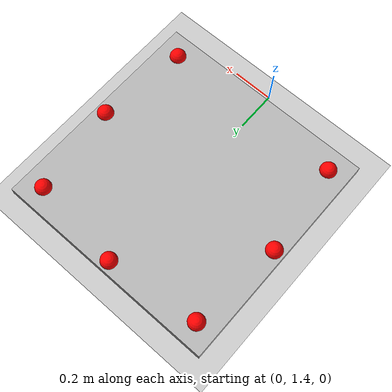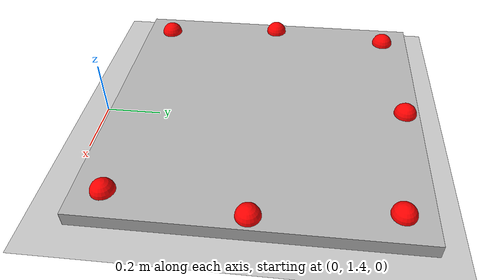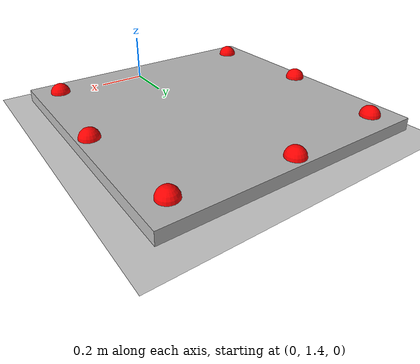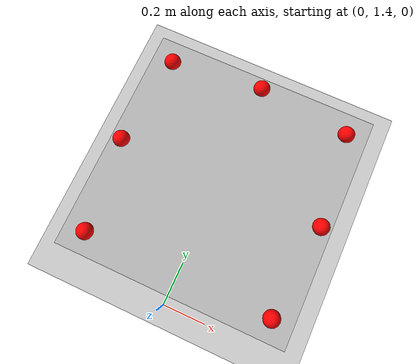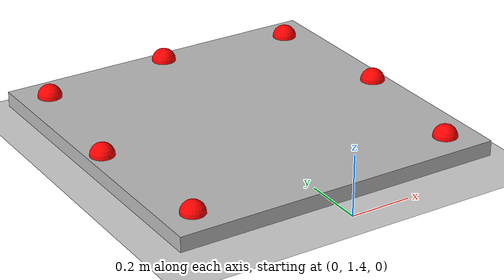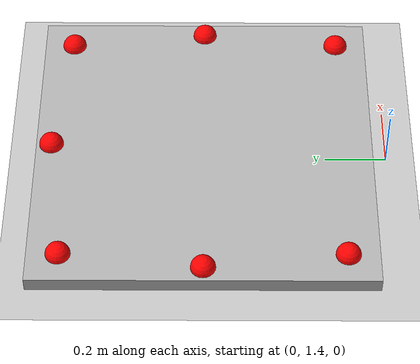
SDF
<sdf version="1.5">
 <world name="default">
  <include><uri>model://sun</uri></include>
  <include><uri>model://ground_plane</uri></include>
  <include><uri>model://asphalt_plane</uri></include>
  <physics name="default_physics" default="0" type="ode">
   <gravity>0 0 -9.8066</gravity>
   <ode>
    <solver>
     <type>quick</type>
     <iters>50</iters>
     <sor>1.0</sor>
     <use_dynamic_moi_rescaling>0</use_dynamic_moi_rescaling>
    </solver>
    <constraints>
     <cfm>0</cfm>
     <erp>0.2</erp>
     <contact_max_correcting_vel>100</contact_max_correcting_vel>
     <contact_surface_layer>0.001</contact_surface_layer>
    </constraints>
   </ode>
   <max_step_size>0.002</max_step_size>
   <real_time_factor>1</real_time_factor>
   <real_time_update_rate>500</real_time_update_rate>
   <magnetic_field>6.0e-6 2.3e-5 -4.2e-5</magnetic_field>
  </physics>
  <model name="Platform">
   <link name="body">
    <collision name="collision"><geometry><box><size>0.05 1.1 1.1</size></box></geometry></collision>
    <visual name="base">
     <pose>0 2 .05 0 1.57 0</pose>
     <geometry><box><size>0.05 1.1 1.1</size></box></geometry>
    </visual>
    <visual name="beacon_1">
     <pose>0.45 1.55 .075 0 0 0</pose>
     <geometry><sphere><radius>0.04</radius></sphere></geometry>
     <material>
      <ambient>1 0 0 1</ambient>
      <diffuse>1 0 0 1</diffuse>
      <specular>0.1 0.1 0.1 1</specular>
      <emissive>0 0 0 0</emissive>
     </material>
    </visual>
    <visual name="beacon_2">
     <pose>.5 2 .075 0 0 0</pose>
     <geometry><sphere><radius>0.04</radius></sphere></geometry>
     <material>
      <ambient>1 0 0 1</ambient>
      <diffuse>1 0 0 1</diffuse>
      <specular>0.1 0.1 0.1 1</specular>
      <emissive>0 0 0 0</emissive>
     </material>
    </visual>
    <visual name="beacon_3">
     <pose>0.45 2.45 .075 0 0 0</pose>
     <geometry><sphere><radius>0.04</radius></sphere></geometry>
     <material>
      <ambient>1 0 0 1</ambient>
      <diffuse>1 0 0 1</diffuse>
      <specular>0.1 0.1 0.1 1</specular>
      <emissive>0 0 0 0</emissive>
     </material>
    </visual>
    <visual name="beacon_4">
     <pose>0 2.5 .075 0 0 0</pose>
     <geometry><sphere><radius>0.04</radius></sphere></geometry>
     <material>
      <ambient>1 0 0 1</ambient>
      <diffuse>1 0 0 1</diffuse>
      <specular>0.1 0.1 0.1 1</specular>
      <emissive>0 0 0 0</emissive>
     </material>
    </visual>
    <visual name="beacon_5">
     <pose>-0.45 2.45 0.075 0 0 0</pose>
     <geometry><sphere><radius>0.04</radius></sphere></geometry>
     <material>
      <ambient>1 0 0 1</ambient>
      <diffuse>1 0 0 1</diffuse>
      <specular>0.1 0.1 0.1 1</specular>
      <emissive>0 0 0 0</emissive>
     </material>
    </visual>
    <visual name="beacon_6">
     <pose>-0.5 2 .075 0 0 0</pose>
     <geometry><sphere><radius>0.04</radius></sphere></geometry>
     <material>
      <ambient>1 0 0 1</ambient>
      <diffuse>1 0 0 1</diffuse>
      <specular>0.1 0.1 0.1 1</specular>
      <emissive>0 0 0 0</emissive>
     </material>
    </visual>
    <visual name="beacon_7">
     <pose>-0.45 1.55 .075 0 0 0</pose>
     <geometry><sphere><radius>0.04</radius></sphere></geometry>
     <material>
      <ambient>1 0 0 1</ambient>
      <diffuse>1 0 0 1</diffuse>
      <specular>0.1 0.1 0.1 1</specular>
      <emissive>0 0 0 0</emissive>
     </material>
    </visual>
   </link>
   <plugin name="push_animate" filename="libanimated_box.so"/>
  </model>
 </world>
</sdf>
